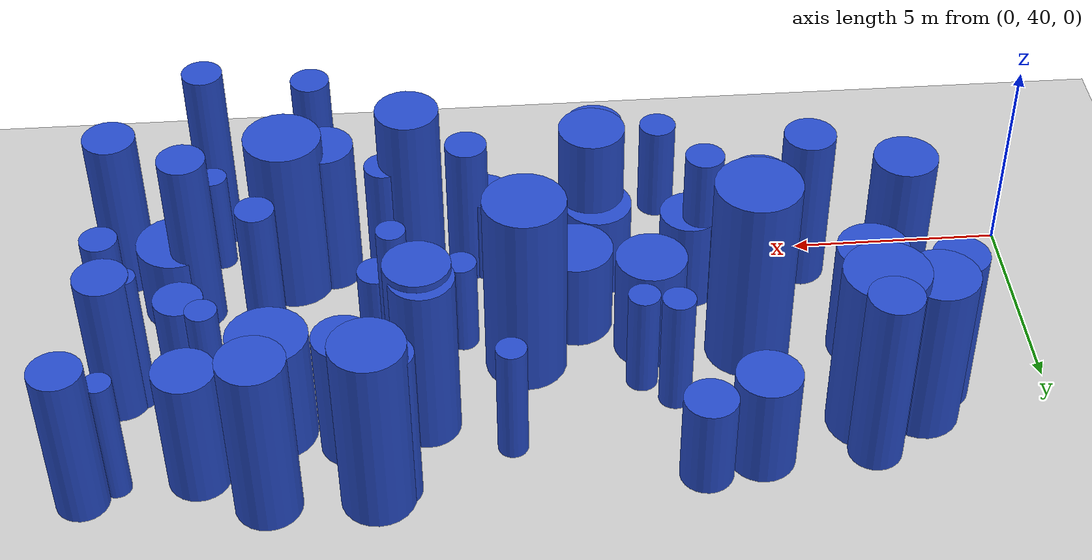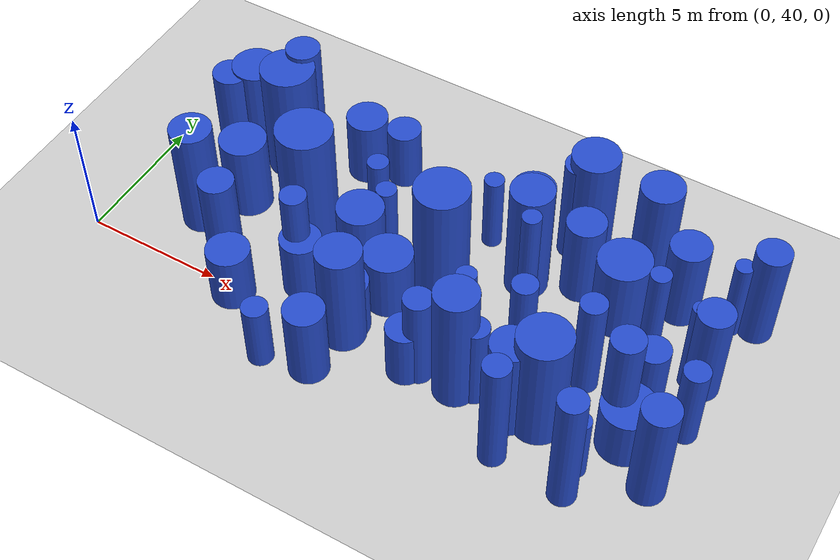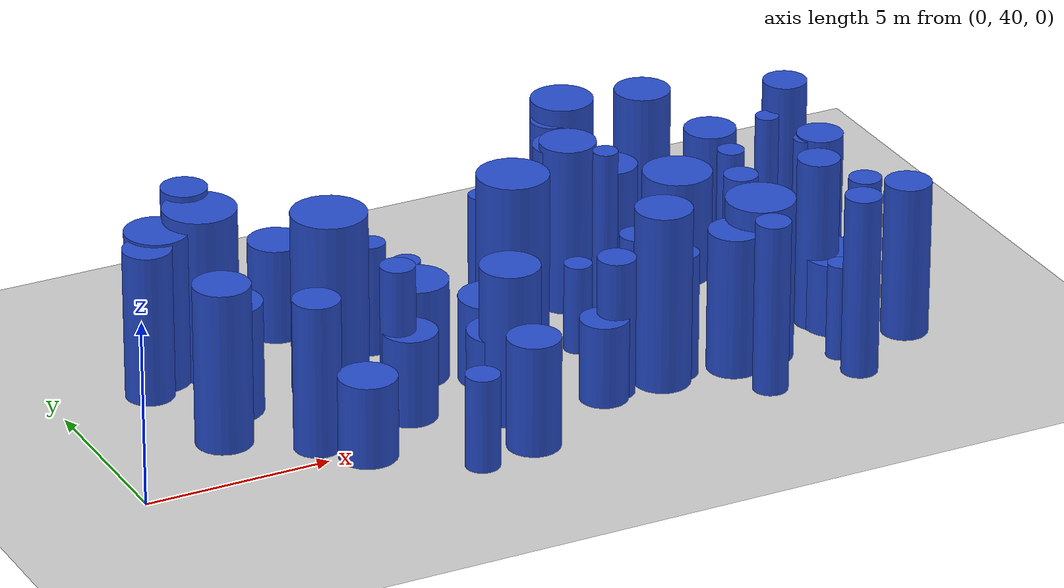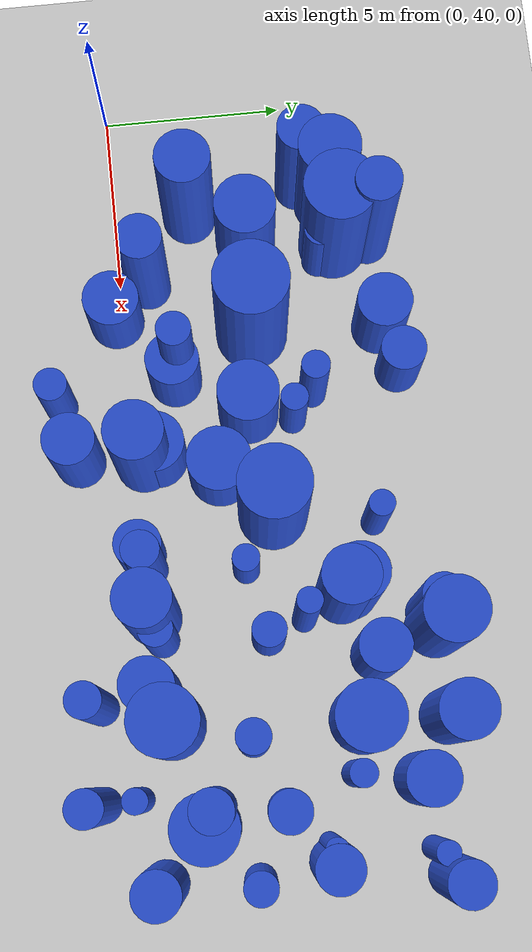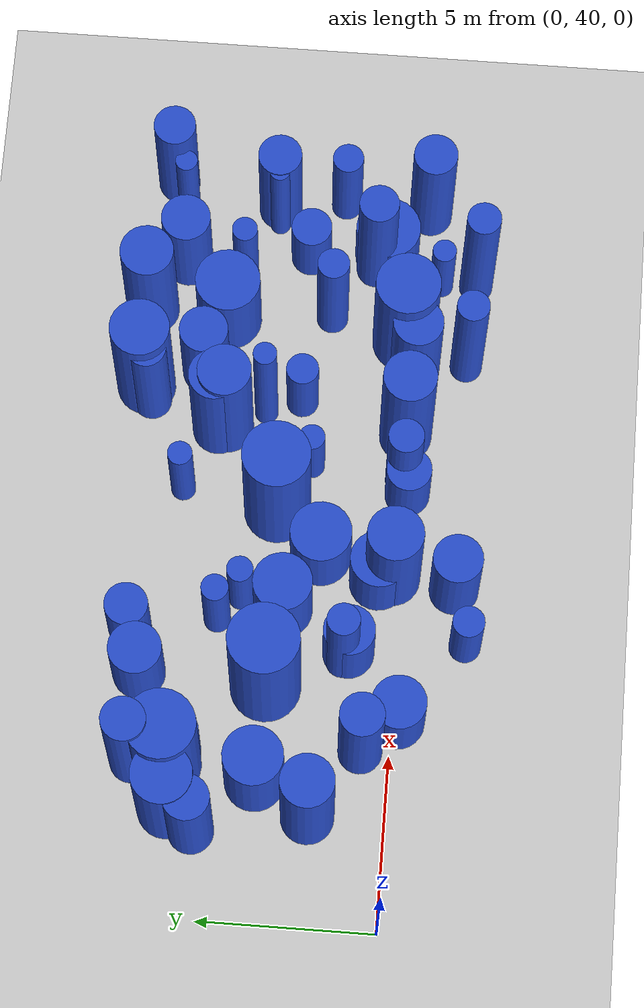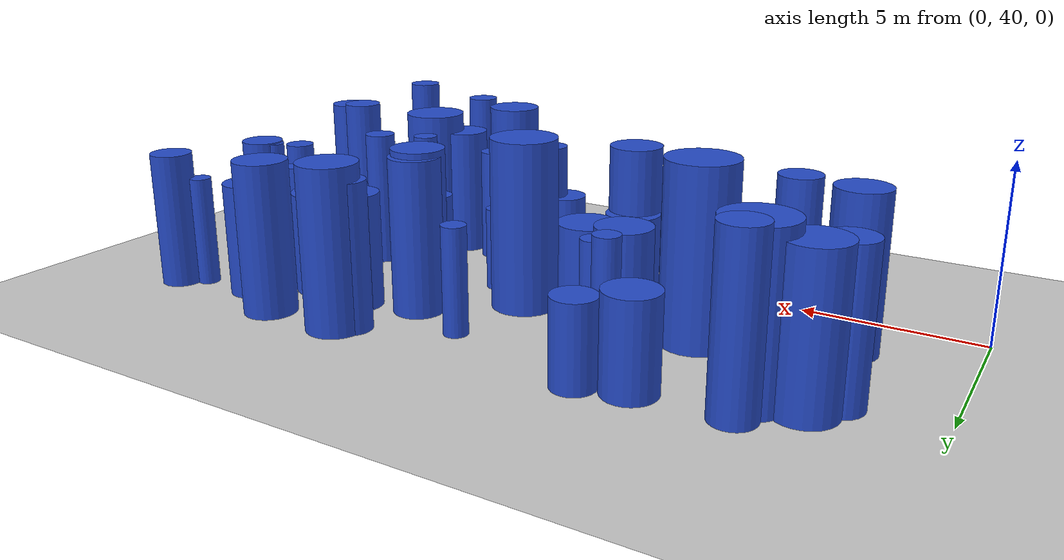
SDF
<sdf version="1.6">
 <world name="default">
  <model name="ground_plane">
   <static>1</static>
   <link name="link">
    <collision name="collision">
     <geometry><plane><normal>0 0 1</normal><size>100 100</size></plane></geometry>
     <surface><friction><ode><mu>100</mu><mu2>50</mu2></ode></friction></surface>
    </collision>
    <visual name="visual">
     <cast_shadows>0</cast_shadows>
     <geometry><plane><normal>0 0 1</normal><size>100 100</size></plane></geometry>
     <material>
      <script><uri>file://media/materials/scripts/gazebo.material</uri><name>Gazebo/Grey</name></script>
     </material>
    </visual>
   </link>
  </model>
  <model name="0">
   <static>0</static>
   <link name="link">
    <inertial>
     <mass>2</mass>
     <inertia><ixx>1.91349</ixx><ixy>0</ixy><ixz>0</ixz><iyy>1.91349</iyy><iyz>0</iyz><izz>0.709288</izz></inertia>
    </inertial>
    <collision name="collision">
     <geometry><cylinder><length>3.05828</length><radius>0.842192</radius></cylinder></geometry>
     <surface><contact><collide_without_contact>1</collide_without_contact></contact></surface>
    </collision>
    <visual name="visual">
     <geometry><cylinder><length>3.05828</length><radius>0.842192</radius></cylinder></geometry>
     <material>
      <script><uri>file://media/materials/scripts/gazebo.material</uri><name>Gazebo/Blue</name></script>
     </material>
    </visual>
    <gravity>0</gravity>
   </link>
   <pose>4.01882 43.668 1.52914 0 -0 0</pose>
  </model>
  <model name="28">
   <static>0</static>
   <link name="link">
    <inertial>
     <mass>2</mass>
     <inertia><ixx>3.31167</ixx><ixy>0</ixy><ixz>0</ixz><iyy>3.31167</iyy><iyz>0</iyz><izz>0.713837</izz></inertia>
    </inertial>
    <collision name="collision">
     <geometry><cylinder><length>4.21052</length><radius>0.844889</radius></cylinder></geometry>
     <surface><contact><collide_without_contact>1</collide_without_contact></contact></surface>
    </collision>
    <visual name="visual">
     <geometry><cylinder><length>4.21052</length><radius>0.844889</radius></cylinder></geometry>
     <material>
      <script><uri>file://media/materials/scripts/gazebo.material</uri><name>Gazebo/Blue</name></script>
     </material>
    </visual>
    <gravity>0</gravity>
   </link>
   <pose>3.07266 46.0083 2.10526 0 -0 0</pose>
  </model>
  <model name="68">
   <static>0</static>
   <link name="link">
    <inertial>
     <mass>2</mass>
     <inertia><ixx>1.10679</ixx><ixy>0</ixy><ixz>0</ixz><iyy>1.10679</iyy><iyz>0</iyz><izz>0.375621</izz></inertia>
    </inertial>
    <collision name="collision">
     <geometry><cylinder><length>2.34816</length><radius>0.61288</radius></cylinder></geometry>
     <surface><contact><collide_without_contact>1</collide_without_contact></contact></surface>
    </collision>
    <visual name="visual">
     <geometry><cylinder><length>2.34816</length><radius>0.61288</radius></cylinder></geometry>
     <material>
      <script><uri>file://media/materials/scripts/gazebo.material</uri><name>Gazebo/Blue</name></script>
     </material>
    </visual>
    <gravity>0</gravity>
   </link>
   <pose>8.21004 47.5125 1.17408 0 -0 0</pose>
  </model>
  <model name="74">
   <static>0</static>
   <link name="link">
    <inertial>
     <mass>2</mass>
     <inertia><ixx>3.87836</ixx><ixy>0</ixy><ixz>0</ixz><iyy>3.87836</iyy><iyz>0</iyz><izz>0.568034</izz></inertia>
    </inertial>
    <collision name="collision">
     <geometry><cylinder><length>4.64393</length><radius>0.75368</radius></cylinder></geometry>
     <surface><contact><collide_without_contact>1</collide_without_contact></contact></surface>
    </collision>
    <visual name="visual">
     <geometry><cylinder><length>4.64393</length><radius>0.75368</radius></cylinder></geometry>
     <material>
      <script><uri>file://media/materials/scripts/gazebo.material</uri><name>Gazebo/Blue</name></script>
     </material>
    </visual>
    <gravity>0</gravity>
   </link>
   <pose>14.3901 45.2579 2.32196 0 -0 0</pose>
  </model>
  <model name="82">
   <static>0</static>
   <link name="link">
    <inertial>
     <mass>2</mass>
     <inertia><ixx>4.29467</ixx><ixy>0</ixy><ixz>0</ixz><iyy>4.29467</iyy><iyz>0</iyz><izz>0.559638</izz></inertia>
    </inertial>
    <collision name="collision">
     <geometry><cylinder><length>4.90807</length><radius>0.74809</radius></cylinder></geometry>
     <surface><contact><collide_without_contact>1</collide_without_contact></contact></surface>
    </collision>
    <visual name="visual">
     <geometry><cylinder><length>4.90807</length><radius>0.74809</radius></cylinder></geometry>
     <material>
      <script><uri>file://media/materials/scripts/gazebo.material</uri><name>Gazebo/Blue</name></script>
     </material>
    </visual>
    <gravity>0</gravity>
   </link>
   <pose>14.4841 40.1495 2.45403 0 -0 0</pose>
  </model>
  <model name="88">
   <static>0</static>
   <link name="link">
    <inertial>
     <mass>2</mass>
     <inertia><ixx>2.79987</ixx><ixy>0</ixy><ixz>0</ixz><iyy>2.79987</iyy><iyz>0</iyz><izz>0.506392</izz></inertia>
    </inertial>
    <collision name="collision">
     <geometry><cylinder><length>3.90897</length><radius>0.711612</radius></cylinder></geometry>
     <surface><contact><collide_without_contact>1</collide_without_contact></contact></surface>
    </collision>
    <visual name="visual">
     <geometry><cylinder><length>3.90897</length><radius>0.711612</radius></cylinder></geometry>
     <material>
      <script><uri>file://media/materials/scripts/gazebo.material</uri><name>Gazebo/Blue</name></script>
     </material>
    </visual>
    <gravity>0</gravity>
   </link>
   <pose>16.49 40.0187 1.95448 0 -0 0</pose>
  </model>
  <model name="95">
   <static>0</static>
   <link name="link">
    <inertial>
     <mass>2</mass>
     <inertia><ixx>2.55412</ixx><ixy>0</ixy><ixz>0</ixz><iyy>2.55412</iyy><iyz>0</iyz><izz>0.249734</izz></inertia>
    </inertial>
    <collision name="collision">
     <geometry><cylinder><length>3.81779</length><radius>0.499734</radius></cylinder></geometry>
     <surface><contact><collide_without_contact>1</collide_without_contact></contact></surface>
    </collision>
    <visual name="visual">
     <geometry><cylinder><length>3.81779</length><radius>0.499734</radius></cylinder></geometry>
     <material>
      <script><uri>file://media/materials/scripts/gazebo.material</uri><name>Gazebo/Blue</name></script>
     </material>
    </visual>
    <gravity>0</gravity>
   </link>
   <pose>13.1436 40.1391 1.9089 0 -0 0</pose>
  </model>
  <model name="108">
   <static>0</static>
   <link name="link">
    <inertial>
     <mass>2</mass>
     <inertia><ixx>1.05789</ixx><ixy>0</ixy><ixz>0</ixz><iyy>1.05789</iyy><iyz>0</iyz><izz>0.136166</izz></inertia>
    </inertial>
    <collision name="collision">
     <geometry><cylinder><length>2.43698</length><radius>0.369006</radius></cylinder></geometry>
     <surface><contact><collide_without_contact>1</collide_without_contact></contact></surface>
    </collision>
    <visual name="visual">
     <geometry><cylinder><length>2.43698</length><radius>0.369006</radius></cylinder></geometry>
     <material>
      <script><uri>file://media/materials/scripts/gazebo.material</uri><name>Gazebo/Blue</name></script>
     </material>
    </visual>
    <gravity>0</gravity>
   </link>
   <pose>13.4097 42.7598 1.21849 0 -0 0</pose>
  </model>
  <model name="109">
   <static>0</static>
   <link name="link">
    <inertial>
     <mass>2</mass>
     <inertia><ixx>1.26102</ixx><ixy>0</ixy><ixz>0</ixz><iyy>1.26102</iyy><iyz>0</iyz><izz>0.13849</izz></inertia>
    </inertial>
    <collision name="collision">
     <geometry><cylinder><length>2.67407</length><radius>0.372142</radius></cylinder></geometry>
     <surface><contact><collide_without_contact>1</collide_without_contact></contact></surface>
    </collision>
    <visual name="visual">
     <geometry><cylinder><length>2.67407</length><radius>0.372142</radius></cylinder></geometry>
     <material>
      <script><uri>file://media/materials/scripts/gazebo.material</uri><name>Gazebo/Blue</name></script>
     </material>
    </visual>
    <gravity>0</gravity>
   </link>
   <pose>9.33583 44.4545 1.33704 0 -0 0</pose>
  </model>
  <model name="118">
   <static>0</static>
   <link name="link">
    <inertial>
     <mass>2</mass>
     <inertia>
      <ixx>2.44235</ixx>
      <ixy>0</ixy>
      <ixz>0</ixz>
      <iyy>2.44235</iyy>
      <iyz>0</iyz>
      <izz>0.0851223</izz>
     </inertia>
    </inertial>
    <collision name="collision">
     <geometry><cylinder><length>3.79456</length><radius>0.291757</radius></cylinder></geometry>
     <surface><contact><collide_without_contact>1</collide_without_contact></contact></surface>
    </collision>
    <visual name="visual">
     <geometry><cylinder><length>3.79456</length><radius>0.291757</radius></cylinder></geometry>
     <material>
      <script><uri>file://media/materials/scripts/gazebo.material</uri><name>Gazebo/Blue</name></script>
     </material>
    </visual>
    <gravity>0</gravity>
   </link>
   <pose>20.8287 44.2206 1.89728 0 -0 0</pose>
  </model>
  <model name="134">
   <static>0</static>
   <link name="link">
    <inertial>
     <mass>2</mass>
     <inertia><ixx>1.64957</ixx><ixy>0</ixy><ixz>0</ixz><iyy>1.64957</iyy><iyz>0</iyz><izz>0.147574</izz></inertia>
    </inertial>
    <collision name="collision">
     <geometry><cylinder><length>3.07485</length><radius>0.384153</radius></cylinder></geometry>
     <surface><contact><collide_without_contact>1</collide_without_contact></contact></surface>
    </collision>
    <visual name="visual">
     <geometry><cylinder><length>3.07485</length><radius>0.384153</radius></cylinder></geometry>
     <material>
      <script><uri>file://media/materials/scripts/gazebo.material</uri><name>Gazebo/Blue</name></script>
     </material>
    </visual>
    <gravity>0</gravity>
   </link>
   <pose>8.63414 45.0783 1.53742 0 -0 0</pose>
  </model>
  <model name="142">
   <static>0</static>
   <link name="link">
    <inertial>
     <mass>2</mass>
     <inertia><ixx>3.93182</ixx><ixy>0</ixy><ixz>0</ixz><iyy>3.93182</iyy><iyz>0</iyz><izz>0.700966</izz></inertia>
    </inertial>
    <collision name="collision">
     <geometry><cylinder><length>4.63551</length><radius>0.837237</radius></cylinder></geometry>
     <surface><contact><collide_without_contact>1</collide_without_contact></contact></surface>
    </collision>
    <visual name="visual">
     <geometry><cylinder><length>4.63551</length><radius>0.837237</radius></cylinder></geometry>
     <material>
      <script><uri>file://media/materials/scripts/gazebo.material</uri><name>Gazebo/Blue</name></script>
     </material>
    </visual>
    <gravity>0</gravity>
   </link>
   <pose>15.4713 47.6908 2.31776 0 -0 0</pose>
  </model>
  <model name="145">
   <static>0</static>
   <link name="link">
    <inertial>
     <mass>2</mass>
     <inertia><ixx>2.0837</ixx><ixy>0</ixy><ixz>0</ixz><iyy>2.0837</iyy><iyz>0</iyz><izz>0.21133</izz></inertia>
    </inertial>
    <collision name="collision">
     <geometry><cylinder><length>3.44502</length><radius>0.459706</radius></cylinder></geometry>
     <surface><contact><collide_without_contact>1</collide_without_contact></contact></surface>
    </collision>
    <visual name="visual">
     <geometry><cylinder><length>3.44502</length><radius>0.459706</radius></cylinder></geometry>
     <material>
      <script><uri>file://media/materials/scripts/gazebo.material</uri><name>Gazebo/Blue</name></script>
     </material>
    </visual>
    <gravity>0</gravity>
   </link>
   <pose>15.1046 40.3209 1.72251 0 -0 0</pose>
  </model>
  <model name="152">
   <static>0</static>
   <link name="link">
    <inertial>
     <mass>2</mass>
     <inertia><ixx>3.84591</ixx><ixy>0</ixy><ixz>0</ixz><iyy>3.84591</iyy><iyz>0</iyz><izz>0.314383</izz></inertia>
    </inertial>
    <collision name="collision">
     <geometry><cylinder><length>4.7045</length><radius>0.560698</radius></cylinder></geometry>
     <surface><contact><collide_without_contact>1</collide_without_contact></contact></surface>
    </collision>
    <visual name="visual">
     <geometry><cylinder><length>4.7045</length><radius>0.560698</radius></cylinder></geometry>
     <material>
      <script><uri>file://media/materials/scripts/gazebo.material</uri><name>Gazebo/Blue</name></script>
     </material>
    </visual>
    <gravity>0</gravity>
   </link>
   <pose>19.626 41.337 2.35225 0 -0 0</pose>
  </model>
  <model name="155">
   <static>0</static>
   <link name="link">
    <inertial>
     <mass>2</mass>
     <inertia><ixx>4.46388</ixx><ixy>0</ixy><ixz>0</ixz><iyy>4.46388</iyy><iyz>0</iyz><izz>0.908011</izz></inertia>
    </inertial>
    <collision name="collision">
     <geometry><cylinder><length>4.90502</length><radius>0.952896</radius></cylinder></geometry>
     <surface><contact><collide_without_contact>1</collide_without_contact></contact></surface>
    </collision>
    <visual name="visual">
     <geometry><cylinder><length>4.90502</length><radius>0.952896</radius></cylinder></geometry>
     <material>
      <script><uri>file://media/materials/scripts/gazebo.material</uri><name>Gazebo/Blue</name></script>
     </material>
    </visual>
    <gravity>0</gravity>
   </link>
   <pose>11.9712 43.6332 2.45251 0 -0 0</pose>
  </model>
  <model name="167">
   <static>0</static>
   <link name="link">
    <inertial>
     <mass>2</mass>
     <inertia><ixx>1.42631</ixx><ixy>0</ixy><ixz>0</ixz><iyy>1.42631</iyy><iyz>0</iyz><izz>0.558462</izz></inertia>
    </inertial>
    <collision name="collision">
     <geometry><cylinder><length>2.62345</length><radius>0.747303</radius></cylinder></geometry>
     <surface><contact><collide_without_contact>1</collide_without_contact></contact></surface>
    </collision>
    <visual name="visual">
     <geometry><cylinder><length>2.62345</length><radius>0.747303</radius></cylinder></geometry>
     <material>
      <script><uri>file://media/materials/scripts/gazebo.material</uri><name>Gazebo/Blue</name></script>
     </material>
    </visual>
    <gravity>0</gravity>
   </link>
   <pose>6.90825 47.1397 1.31173 0 -0 0</pose>
  </model>
  <model name="175">
   <static>0</static>
   <link name="link">
    <inertial>
     <mass>2</mass>
     <inertia><ixx>3.72911</ixx><ixy>0</ixy><ixz>0</ixz><iyy>3.72911</iyy><iyz>0</iyz><izz>0.833685</izz></inertia>
    </inertial>
    <collision name="collision">
     <geometry><cylinder><length>4.45798</length><radius>0.913064</radius></cylinder></geometry>
     <surface><contact><collide_without_contact>1</collide_without_contact></contact></surface>
    </collision>
    <visual name="visual">
     <geometry><cylinder><length>4.45798</length><radius>0.913064</radius></cylinder></geometry>
     <material>
      <script><uri>file://media/materials/scripts/gazebo.material</uri><name>Gazebo/Blue</name></script>
     </material>
    </visual>
    <gravity>0</gravity>
   </link>
   <pose>17.3945 40.3735 2.22899 0 -0 0</pose>
  </model>
  <model name="179">
   <static>0</static>
   <link name="link">
    <inertial>
     <mass>2</mass>
     <inertia><ixx>2.08157</ixx><ixy>0</ixy><ixz>0</ixz><iyy>2.08157</iyy><iyz>0</iyz><izz>0.475053</izz></inertia>
    </inertial>
    <collision name="collision">
     <geometry><cylinder><length>3.3263</length><radius>0.689241</radius></cylinder></geometry>
     <surface><contact><collide_without_contact>1</collide_without_contact></contact></surface>
    </collision>
    <visual name="visual">
     <geometry><cylinder><length>3.3263</length><radius>0.689241</radius></cylinder></geometry>
     <material>
      <script><uri>file://media/materials/scripts/gazebo.material</uri><name>Gazebo/Blue</name></script>
     </material>
    </visual>
    <gravity>0</gravity>
   </link>
   <pose>16.0661 46.0022 1.66315 0 -0 0</pose>
  </model>
  <model name="189">
   <static>0</static>
   <link name="link">
    <inertial>
     <mass>2</mass>
     <inertia><ixx>1.29349</ixx><ixy>0</ixy><ixz>0</ixz><iyy>1.29349</iyy><iyz>0</iyz><izz>0.210349</izz></inertia>
    </inertial>
    <collision name="collision">
     <geometry><cylinder><length>2.67019</length><radius>0.458638</radius></cylinder></geometry>
     <surface><contact><collide_without_contact>1</collide_without_contact></contact></surface>
    </collision>
    <visual name="visual">
     <geometry><cylinder><length>2.67019</length><radius>0.458638</radius></cylinder></geometry>
     <material>
      <script><uri>file://media/materials/scripts/gazebo.material</uri><name>Gazebo/Blue</name></script>
     </material>
    </visual>
    <gravity>0</gravity>
   </link>
   <pose>15.3332 43.1693 1.33509 0 -0 0</pose>
  </model>
  <model name="228">
   <static>0</static>
   <link name="link">
    <inertial>
     <mass>2</mass>
     <inertia><ixx>3.06322</ixx><ixy>0</ixy><ixz>0</ixz><iyy>3.06322</iyy><iyz>0</iyz><izz>0.414416</izz></inertia>
    </inertial>
    <collision name="collision">
     <geometry><cylinder><length>4.13957</length><radius>0.643751</radius></cylinder></geometry>
     <surface><contact><collide_without_contact>1</collide_without_contact></contact></surface>
    </collision>
    <visual name="visual">
     <geometry><cylinder><length>4.13957</length><radius>0.643751</radius></cylinder></geometry>
     <material>
      <script><uri>file://media/materials/scripts/gazebo.material</uri><name>Gazebo/Blue</name></script>
     </material>
    </visual>
    <gravity>0</gravity>
   </link>
   <pose>2.4945 45.3105 2.06979 0 -0 0</pose>
  </model>
  <model name="229">
   <static>0</static>
   <link name="link">
    <inertial>
     <mass>2</mass>
     <inertia><ixx>3.49535</ixx><ixy>0</ixy><ixz>0</ixz><iyy>3.49535</iyy><iyz>0</iyz><izz>0.568767</izz></inertia>
    </inertial>
    <collision name="collision">
     <geometry><cylinder><length>4.38929</length><radius>0.754166</radius></cylinder></geometry>
     <surface><contact><collide_without_contact>1</collide_without_contact></contact></surface>
    </collision>
    <visual name="visual">
     <geometry><cylinder><length>4.38929</length><radius>0.754166</radius></cylinder></geometry>
     <material>
      <script><uri>file://media/materials/scripts/gazebo.material</uri><name>Gazebo/Blue</name></script>
     </material>
    </visual>
    <gravity>0</gravity>
   </link>
   <pose>17.8693 47.7119 2.19464 0 -0 0</pose>
  </model>
  <model name="232">
   <static>0</static>
   <link name="link">
    <inertial>
     <mass>2</mass>
     <inertia><ixx>3.90025</ixx><ixy>0</ixy><ixz>0</ixz><iyy>3.90025</iyy><iyz>0</iyz><izz>0.947604</izz></inertia>
    </inertial>
    <collision name="collision">
     <geometry><cylinder><length>4.53417</length><radius>0.97345</radius></cylinder></geometry>
     <surface><contact><collide_without_contact>1</collide_without_contact></contact></surface>
    </collision>
    <visual name="visual">
     <geometry><cylinder><length>4.53417</length><radius>0.97345</radius></cylinder></geometry>
     <material>
      <script><uri>file://media/materials/scripts/gazebo.material</uri><name>Gazebo/Blue</name></script>
     </material>
    </visual>
    <gravity>0</gravity>
   </link>
   <pose>4.33411 46.1373 2.26709 0 -0 0</pose>
  </model>
  <model name="240">
   <static>0</static>
   <link name="link">
    <inertial>
     <mass>2</mass>
     <inertia><ixx>3.86499</ixx><ixy>0</ixy><ixz>0</ixz><iyy>3.86499</iyy><iyz>0</iyz><izz>0.382414</izz></inertia>
    </inertial>
    <collision name="collision">
     <geometry><cylinder><length>4.69497</length><radius>0.618397</radius></cylinder></geometry>
     <surface><contact><collide_without_contact>1</collide_without_contact></contact></surface>
    </collision>
    <visual name="visual">
     <geometry><cylinder><length>4.69497</length><radius>0.618397</radius></cylinder></geometry>
     <material>
      <script><uri>file://media/materials/scripts/gazebo.material</uri><name>Gazebo/Blue</name></script>
     </material>
    </visual>
    <gravity>0</gravity>
   </link>
   <pose>4.35108 47.1129 2.34748 0 -0 0</pose>
  </model>
  <model name="260">
   <static>0</static>
   <link name="link">
    <inertial>
     <mass>2</mass>
     <inertia><ixx>2.64909</ixx><ixy>0</ixy><ixz>0</ixz><iyy>2.64909</iyy><iyz>0</iyz><izz>0.386923</izz></inertia>
    </inertial>
    <collision name="collision">
     <geometry><cylinder><length>3.83846</length><radius>0.622031</radius></cylinder></geometry>
     <surface><contact><collide_without_contact>1</collide_without_contact></contact></surface>
    </collision>
    <visual name="visual">
     <geometry><cylinder><length>3.83846</length><radius>0.622031</radius></cylinder></geometry>
     <material>
      <script><uri>file://media/materials/scripts/gazebo.material</uri><name>Gazebo/Blue</name></script>
     </material>
    </visual>
    <gravity>0</gravity>
   </link>
   <pose>21.307 44.2487 1.91923 0 -0 0</pose>
  </model>
  <model name="276">
   <static>0</static>
   <link name="link">
    <inertial>
     <mass>2</mass>
     <inertia><ixx>2.07114</ixx><ixy>0</ixy><ixz>0</ixz><iyy>2.07114</iyy><iyz>0</iyz><izz>0.1301</izz></inertia>
    </inertial>
    <collision name="collision">
     <geometry><cylinder><length>3.46937</length><radius>0.360694</radius></cylinder></geometry>
     <surface><contact><collide_without_contact>1</collide_without_contact></contact></surface>
    </collision>
    <visual name="visual">
     <geometry><cylinder><length>3.46937</length><radius>0.360694</radius></cylinder></geometry>
     <material>
      <script><uri>file://media/materials/scripts/gazebo.material</uri><name>Gazebo/Blue</name></script>
     </material>
    </visual>
    <gravity>0</gravity>
   </link>
   <pose>19.1176 45.0842 1.73469 0 -0 0</pose>
  </model>
  <model name="279">
   <static>0</static>
   <link name="link">
    <inertial>
     <mass>2</mass>
     <inertia><ixx>1.11092</ixx><ixy>0</ixy><ixz>0</ixz><iyy>1.11092</iyy><iyz>0</iyz><izz>0.855924</izz></inertia>
    </inertial>
    <collision name="collision">
     <geometry><cylinder><length>2.02429</length><radius>0.925162</radius></cylinder></geometry>
     <surface><contact><collide_without_contact>1</collide_without_contact></contact></surface>
    </collision>
    <visual name="visual">
     <geometry><cylinder><length>2.02429</length><radius>0.925162</radius></cylinder></geometry>
     <material>
      <script><uri>file://media/materials/scripts/gazebo.material</uri><name>Gazebo/Blue</name></script>
     </material>
    </visual>
    <gravity>0</gravity>
   </link>
   <pose>20.093 41.0453 1.01215 0 -0 0</pose>
  </model>
  <model name="300">
   <static>0</static>
   <link name="link">
    <inertial>
     <mass>2</mass>
     <inertia><ixx>3.06132</ixx><ixy>0</ixy><ixz>0</ixz><iyy>3.06132</iyy><iyz>0</iyz><izz>0.210529</izz></inertia>
    </inertial>
    <collision name="collision">
     <geometry><cylinder><length>4.21145</length><radius>0.458835</radius></cylinder></geometry>
     <surface><contact><collide_without_contact>1</collide_without_contact></contact></surface>
    </collision>
    <visual name="visual">
     <geometry><cylinder><length>4.21145</length><radius>0.458835</radius></cylinder></geometry>
     <material>
      <script><uri>file://media/materials/scripts/gazebo.material</uri><name>Gazebo/Blue</name></script>
     </material>
    </visual>
    <gravity>0</gravity>
   </link>
   <pose>7.65049 41.4905 2.10573 0 -0 0</pose>
  </model>
  <model name="305">
   <static>0</static>
   <link name="link">
    <inertial>
     <mass>2</mass>
     <inertia><ixx>3.07344</ixx><ixy>0</ixy><ixz>0</ixz><iyy>3.07344</iyy><iyz>0</iyz><izz>0.383348</izz></inertia>
    </inertial>
    <collision name="collision">
     <geometry><cylinder><length>4.1582</length><radius>0.619151</radius></cylinder></geometry>
     <surface><contact><collide_without_contact>1</collide_without_contact></contact></surface>
    </collision>
    <visual name="visual">
     <geometry><cylinder><length>4.1582</length><radius>0.619151</radius></cylinder></geometry>
     <material>
      <script><uri>file://media/materials/scripts/gazebo.material</uri><name>Gazebo/Blue</name></script>
     </material>
    </visual>
    <gravity>0</gravity>
   </link>
   <pose>5.07735 40.8119 2.0791 0 -0 0</pose>
  </model>
  <model name="319">
   <static>0</static>
   <link name="link">
    <inertial>
     <mass>2</mass>
     <inertia><ixx>4.22781</ixx><ixy>0</ixy><ixz>0</ixz><iyy>4.22781</iyy><iyz>0</iyz><izz>0.231481</izz></inertia>
    </inertial>
    <collision name="collision">
     <geometry><cylinder><length>4.96713</length><radius>0.481124</radius></cylinder></geometry>
     <surface><contact><collide_without_contact>1</collide_without_contact></contact></surface>
    </collision>
    <visual name="visual">
     <geometry><cylinder><length>4.96713</length><radius>0.481124</radius></cylinder></geometry>
     <material>
      <script><uri>file://media/materials/scripts/gazebo.material</uri><name>Gazebo/Blue</name></script>
     </material>
    </visual>
    <gravity>0</gravity>
   </link>
   <pose>19.2726 38.3965 2.48357 0 -0 0</pose>
  </model>
  <model name="321">
   <static>0</static>
   <link name="link">
    <inertial>
     <mass>2</mass>
     <inertia><ixx>3.59995</ixx><ixy>0</ixy><ixz>0</ixz><iyy>3.59995</iyy><iyz>0</iyz><izz>0.54843</izz></inertia>
    </inertial>
    <collision name="collision">
     <geometry><cylinder><length>4.46704</length><radius>0.74056</radius></cylinder></geometry>
     <surface><contact><collide_without_contact>1</collide_without_contact></contact></surface>
    </collision>
    <visual name="visual">
     <geometry><cylinder><length>4.46704</length><radius>0.74056</radius></cylinder></geometry>
     <material>
      <script><uri>file://media/materials/scripts/gazebo.material</uri><name>Gazebo/Blue</name></script>
     </material>
    </visual>
    <gravity>0</gravity>
   </link>
   <pose>14.3127 45.5094 2.23352 0 -0 0</pose>
  </model>
  <model name="322">
   <static>0</static>
   <link name="link">
    <inertial>
     <mass>2</mass>
     <inertia><ixx>4.63713</ixx><ixy>0</ixy><ixz>0</ixz><iyy>4.63713</iyy><iyz>0</iyz><izz>0.99391</izz></inertia>
    </inertial>
    <collision name="collision">
     <geometry><cylinder><length>4.98408</length><radius>0.996951</radius></cylinder></geometry>
     <surface><contact><collide_without_contact>1</collide_without_contact></contact></surface>
    </collision>
    <visual name="visual">
     <geometry><cylinder><length>4.98408</length><radius>0.996951</radius></cylinder></geometry>
     <material>
      <script><uri>file://media/materials/scripts/gazebo.material</uri><name>Gazebo/Blue</name></script>
     </material>
    </visual>
    <gravity>0</gravity>
   </link>
   <pose>6.7494 43.5717 2.49204 0 -0 0</pose>
  </model>
  <model name="324">
   <static>0</static>
   <link name="link">
    <inertial>
     <mass>2</mass>
     <inertia><ixx>1.13385</ixx><ixy>0</ixy><ixz>0</ixz><iyy>1.13385</iyy><iyz>0</iyz><izz>0.584504</izz></inertia>
    </inertial>
    <collision name="collision">
     <geometry><cylinder><length>2.24713</length><radius>0.764528</radius></cylinder></geometry>
     <surface><contact><collide_without_contact>1</collide_without_contact></contact></surface>
    </collision>
    <visual name="visual">
     <geometry><cylinder><length>2.24713</length><radius>0.764528</radius></cylinder></geometry>
     <material>
      <script><uri>file://media/materials/scripts/gazebo.material</uri><name>Gazebo/Blue</name></script>
     </material>
    </visual>
    <gravity>0</gravity>
   </link>
   <pose>6.00566 39.8318 1.12357 0 -0 0</pose>
  </model>
  <model name="325">
   <static>0</static>
   <link name="link">
    <inertial>
     <mass>2</mass>
     <inertia><ixx>1.27823</ixx><ixy>0</ixy><ixz>0</ixz><iyy>1.27823</iyy><iyz>0</iyz><izz>0.754345</izz></inertia>
    </inertial>
    <collision name="collision">
     <geometry><cylinder><length>2.32516</length><radius>0.86853</radius></cylinder></geometry>
     <surface><contact><collide_without_contact>1</collide_without_contact></contact></surface>
    </collision>
    <visual name="visual">
     <geometry><cylinder><length>2.32516</length><radius>0.86853</radius></cylinder></geometry>
     <material>
      <script><uri>file://media/materials/scripts/gazebo.material</uri><name>Gazebo/Blue</name></script>
     </material>
    </visual>
    <gravity>0</gravity>
   </link>
   <pose>10.6997 42.3137 1.16258 0 -0 0</pose>
  </model>
  <model name="334">
   <static>0</static>
   <link name="link">
    <inertial>
     <mass>2</mass>
     <inertia><ixx>3.26591</ixx><ixy>0</ixy><ixz>0</ixz><iyy>3.26591</iyy><iyz>0</iyz><izz>0.61902</izz></inertia>
    </inertial>
    <collision name="collision">
     <geometry><cylinder><length>4.2117</length><radius>0.786778</radius></cylinder></geometry>
     <surface><contact><collide_without_contact>1</collide_without_contact></contact></surface>
    </collision>
    <visual name="visual">
     <geometry><cylinder><length>4.2117</length><radius>0.786778</radius></cylinder></geometry>
     <material>
      <script><uri>file://media/materials/scripts/gazebo.material</uri><name>Gazebo/Blue</name></script>
     </material>
    </visual>
    <gravity>0</gravity>
   </link>
   <pose>10.1774 40.2475 2.10585 0 -0 0</pose>
  </model>
  <model name="337">
   <static>0</static>
   <link name="link">
    <inertial>
     <mass>2</mass>
     <inertia><ixx>1.23255</ixx><ixy>0</ixy><ixz>0</ixz><iyy>1.23255</iyy><iyz>0</iyz><izz>0.525802</izz></inertia>
    </inertial>
    <collision name="collision">
     <geometry><cylinder><length>2.41203</length><radius>0.725122</radius></cylinder></geometry>
     <surface><contact><collide_without_contact>1</collide_without_contact></contact></surface>
    </collision>
    <visual name="visual">
     <geometry><cylinder><length>2.41203</length><radius>0.725122</radius></cylinder></geometry>
     <material>
      <script><uri>file://media/materials/scripts/gazebo.material</uri><name>Gazebo/Blue</name></script>
     </material>
    </visual>
    <gravity>0</gravity>
   </link>
   <pose>7.90143 41.3302 1.20601 0 -0 0</pose>
  </model>
  <model name="338">
   <static>0</static>
   <link name="link">
    <inertial>
     <mass>2</mass>
     <inertia><ixx>3.05876</ixx><ixy>0</ixy><ixz>0</ixz><iyy>3.05876</iyy><iyz>0</iyz><izz>0.308744</izz></inertia>
    </inertial>
    <collision name="collision">
     <geometry><cylinder><length>4.17448</length><radius>0.555647</radius></cylinder></geometry>
     <surface><contact><collide_without_contact>1</collide_without_contact></contact></surface>
    </collision>
    <visual name="visual">
     <geometry><cylinder><length>4.17448</length><radius>0.555647</radius></cylinder></geometry>
     <material>
      <script><uri>file://media/materials/scripts/gazebo.material</uri><name>Gazebo/Blue</name></script>
     </material>
    </visual>
    <gravity>0</gravity>
   </link>
   <pose>15.0571 47.4882 2.08724 0 -0 0</pose>
  </model>
  <model name="343">
   <static>0</static>
   <link name="link">
    <inertial>
     <mass>2</mass>
     <inertia><ixx>1.19285</ixx><ixy>0</ixy><ixz>0</ixz><iyy>1.19285</iyy><iyz>0</iyz><izz>0.202566</izz></inertia>
    </inertial>
    <collision name="collision">
     <geometry><cylinder><length>2.55918</length><radius>0.450073</radius></cylinder></geometry>
     <surface><contact><collide_without_contact>1</collide_without_contact></contact></surface>
    </collision>
    <visual name="visual">
     <geometry><cylinder><length>2.55918</length><radius>0.450073</radius></cylinder></geometry>
     <material>
      <script><uri>file://media/materials/scripts/gazebo.material</uri><name>Gazebo/Blue</name></script>
     </material>
    </visual>
    <gravity>0</gravity>
   </link>
   <pose>8.32653 38.0844 1.27959 0 -0 0</pose>
  </model>
  <model name="346">
   <static>0</static>
   <link name="link">
    <inertial>
     <mass>2</mass>
     <inertia><ixx>3.53172</ixx><ixy>0</ixy><ixz>0</ixz><iyy>3.53172</iyy><iyz>0</iyz><izz>0.559053</izz></inertia>
    </inertial>
    <collision name="collision">
     <geometry><cylinder><length>4.41737</length><radius>0.747698</radius></cylinder></geometry>
     <surface><contact><collide_without_contact>1</collide_without_contact></contact></surface>
    </collision>
    <visual name="visual">
     <geometry><cylinder><length>4.41737</length><radius>0.747698</radius></cylinder></geometry>
     <material>
      <script><uri>file://media/materials/scripts/gazebo.material</uri><name>Gazebo/Blue</name></script>
     </material>
    </visual>
    <gravity>0</gravity>
   </link>
   <pose>3.10565 42.1355 2.20869 0 -0 0</pose>
  </model>
  <model name="354">
   <static>0</static>
   <link name="link">
    <inertial>
     <mass>2</mass>
     <inertia><ixx>2.08348</ixx><ixy>0</ixy><ixz>0</ixz><iyy>2.08348</iyy><iyz>0</iyz><izz>0.492055</izz></inertia>
    </inertial>
    <collision name="collision">
     <geometry><cylinder><length>3.32035</length><radius>0.701466</radius></cylinder></geometry>
     <surface><contact><collide_without_contact>1</collide_without_contact></contact></surface>
    </collision>
    <visual name="visual">
     <geometry><cylinder><length>3.32035</length><radius>0.701466</radius></cylinder></geometry>
     <material>
      <script><uri>file://media/materials/scripts/gazebo.material</uri><name>Gazebo/Blue</name></script>
     </material>
    </visual>
    <gravity>0</gravity>
   </link>
   <pose>19.4159 46.7882 1.66017 0 -0 0</pose>
  </model>
  <model name="357">
   <static>0</static>
   <link name="link">
    <inertial>
     <mass>2</mass>
     <inertia><ixx>1.18026</ixx><ixy>0</ixy><ixz>0</ixz><iyy>1.18026</iyy><iyz>0</iyz><izz>0.202862</izz></inertia>
    </inertial>
    <collision name="collision">
     <geometry><cylinder><length>2.5442</length><radius>0.450403</radius></cylinder></geometry>
     <surface><contact><collide_without_contact>1</collide_without_contact></contact></surface>
    </collision>
    <visual name="visual">
     <geometry><cylinder><length>2.5442</length><radius>0.450403</radius></cylinder></geometry>
     <material>
      <script><uri>file://media/materials/scripts/gazebo.material</uri><name>Gazebo/Blue</name></script>
     </material>
    </visual>
    <gravity>0</gravity>
   </link>
   <pose>4.75001 45.6599 1.2721 0 -0 0</pose>
  </model>
  <model name="365">
   <static>0</static>
   <link name="link">
    <inertial>
     <mass>2</mass>
     <inertia><ixx>1.05494</ixx><ixy>0</ixy><ixz>0</ixz><iyy>1.05494</iyy><iyz>0</iyz><izz>0.408327</izz></inertia>
    </inertial>
    <collision name="collision">
     <geometry><cylinder><length>2.25935</length><radius>0.639004</radius></cylinder></geometry>
     <surface><contact><collide_without_contact>1</collide_without_contact></contact></surface>
    </collision>
    <visual name="visual">
     <geometry><cylinder><length>2.25935</length><radius>0.639004</radius></cylinder></geometry>
     <material>
      <script><uri>file://media/materials/scripts/gazebo.material</uri><name>Gazebo/Blue</name></script>
     </material>
    </visual>
    <gravity>0</gravity>
   </link>
   <pose>12.7254 39.9855 1.12968 0 -0 0</pose>
  </model>
  <model name="383">
   <static>0</static>
   <link name="link">
    <inertial>
     <mass>2</mass>
     <inertia><ixx>1.61821</ixx><ixy>0</ixy><ixz>0</ixz><iyy>1.61821</iyy><iyz>0</iyz><izz>0.121946</izz></inertia>
    </inertial>
    <collision name="collision">
     <geometry><cylinder><length>3.0567</length><radius>0.349207</radius></cylinder></geometry>
     <surface><contact><collide_without_contact>1</collide_without_contact></contact></surface>
    </collision>
    <visual name="visual">
     <geometry><cylinder><length>3.0567</length><radius>0.349207</radius></cylinder></geometry>
     <material>
      <script><uri>file://media/materials/scripts/gazebo.material</uri><name>Gazebo/Blue</name></script>
     </material>
    </visual>
    <gravity>0</gravity>
   </link>
   <pose>12.444 46.3646 1.52835 0 -0 0</pose>
  </model>
  <model name="386">
   <static>0</static>
   <link name="link">
    <inertial>
     <mass>2</mass>
     <inertia><ixx>3.73611</ixx><ixy>0</ixy><ixz>0</ixz><iyy>3.73611</iyy><iyz>0</iyz><izz>0.109859</izz></inertia>
    </inertial>
    <collision name="collision">
     <geometry><cylinder><length>4.69969</length><radius>0.33145</radius></cylinder></geometry>
     <surface><contact><collide_without_contact>1</collide_without_contact></contact></surface>
    </collision>
    <visual name="visual">
     <geometry><cylinder><length>4.69969</length><radius>0.33145</radius></cylinder></geometry>
     <material>
      <script><uri>file://media/materials/scripts/gazebo.material</uri><name>Gazebo/Blue</name></script>
     </material>
    </visual>
    <gravity>0</gravity>
   </link>
   <pose>14.9246 44.1749 2.34985 0 -0 0</pose>
  </model>
  <model name="395">
   <static>0</static>
   <link name="link">
    <inertial>
     <mass>2</mass>
     <inertia><ixx>1.78497</ixx><ixy>0</ixy><ixz>0</ixz><iyy>1.78497</iyy><iyz>0</iyz><izz>0.491911</izz></inertia>
    </inertial>
    <collision name="collision">
     <geometry><cylinder><length>3.03876</length><radius>0.701363</radius></cylinder></geometry>
     <surface><contact><collide_without_contact>1</collide_without_contact></contact></surface>
    </collision>
    <visual name="visual">
     <geometry><cylinder><length>3.03876</length><radius>0.701363</radius></cylinder></geometry>
     <material>
      <script><uri>file://media/materials/scripts/gazebo.material</uri><name>Gazebo/Blue</name></script>
     </material>
    </visual>
    <gravity>0</gravity>
   </link>
   <pose>9.96078 38.4895 1.51938 0 -0 0</pose>
  </model>
  <model name="401">
   <static>0</static>
   <link name="link">
    <inertial>
     <mass>2</mass>
     <inertia><ixx>2.89606</ixx><ixy>0</ixy><ixz>0</ixz><iyy>2.89606</iyy><iyz>0</iyz><izz>0.205646</izz></inertia>
    </inertial>
    <collision name="collision">
     <geometry><cylinder><length>4.09382</length><radius>0.453482</radius></cylinder></geometry>
     <surface><contact><collide_without_contact>1</collide_without_contact></contact></surface>
    </collision>
    <visual name="visual">
     <geometry><cylinder><length>4.09382</length><radius>0.453482</radius></cylinder></geometry>
     <material>
      <script><uri>file://media/materials/scripts/gazebo.material</uri><name>Gazebo/Blue</name></script>
     </material>
    </visual>
    <gravity>0</gravity>
   </link>
   <pose>17.9887 42.4952 2.04691 0 -0 0</pose>
  </model>
  <model name="403">
   <static>0</static>
   <link name="link">
    <inertial>
     <mass>2</mass>
     <inertia><ixx>1.91189</ixx><ixy>0</ixy><ixz>0</ixz><iyy>1.91189</iyy><iyz>0</iyz><izz>0.858588</izz></inertia>
    </inertial>
    <collision name="collision">
     <geometry><cylinder><length>2.98255</length><radius>0.9266</radius></cylinder></geometry>
     <surface><contact><collide_without_contact>1</collide_without_contact></contact></surface>
    </collision>
    <visual name="visual">
     <geometry><cylinder><length>2.98255</length><radius>0.9266</radius></cylinder></geometry>
     <material>
      <script><uri>file://media/materials/scripts/gazebo.material</uri><name>Gazebo/Blue</name></script>
     </material>
    </visual>
    <gravity>0</gravity>
   </link>
   <pose>17.7378 45.4682 1.49127 0 -0 0</pose>
  </model>
  <model name="404">
   <static>0</static>
   <link name="link">
    <inertial>
     <mass>2</mass>
     <inertia><ixx>1.18362</ixx><ixy>0</ixy><ixz>0</ixz><iyy>1.18362</iyy><iyz>0</iyz><izz>0.678936</izz></inertia>
    </inertial>
    <collision name="collision">
     <geometry><cylinder><length>2.25054</length><radius>0.823976</radius></cylinder></geometry>
     <surface><contact><collide_without_contact>1</collide_without_contact></contact></surface>
    </collision>
    <visual name="visual">
     <geometry><cylinder><length>2.25054</length><radius>0.823976</radius></cylinder></geometry>
     <material>
      <script><uri>file://media/materials/scripts/gazebo.material</uri><name>Gazebo/Blue</name></script>
     </material>
    </visual>
    <gravity>0</gravity>
   </link>
   <pose>10.053 40.635 1.12527 0 -0 0</pose>
  </model>
  <model name="416">
   <static>0</static>
   <link name="link">
    <inertial>
     <mass>2</mass>
     <inertia><ixx>2.55844</ixx><ixy>0</ixy><ixz>0</ixz><iyy>2.55844</iyy><iyz>0</iyz><izz>0.238195</izz></inertia>
    </inertial>
    <collision name="collision">
     <geometry><cylinder><length>3.82571</length><radius>0.488053</radius></cylinder></geometry>
     <surface><contact><collide_without_contact>1</collide_without_contact></contact></surface>
    </collision>
    <visual name="visual">
     <geometry><cylinder><length>3.82571</length><radius>0.488053</radius></cylinder></geometry>
     <material>
      <script><uri>file://media/materials/scripts/gazebo.material</uri><name>Gazebo/Blue</name></script>
     </material>
    </visual>
    <gravity>0</gravity>
   </link>
   <pose>10.3213 40.259 1.91286 0 -0 0</pose>
  </model>
  <model name="420">
   <static>0</static>
   <link name="link">
    <inertial>
     <mass>2</mass>
     <inertia><ixx>1.2135</ixx><ixy>0</ixy><ixz>0</ixz><iyy>1.2135</iyy><iyz>0</iyz><izz>0.1152</izz></inertia>
    </inertial>
    <collision name="collision">
     <geometry><cylinder><length>2.63352</length><radius>0.339411</radius></cylinder></geometry>
     <surface><contact><collide_without_contact>1</collide_without_contact></contact></surface>
    </collision>
    <visual name="visual">
     <geometry><cylinder><length>2.63352</length><radius>0.339411</radius></cylinder></geometry>
     <material>
      <script><uri>file://media/materials/scripts/gazebo.material</uri><name>Gazebo/Blue</name></script>
     </material>
    </visual>
    <gravity>0</gravity>
   </link>
   <pose>19.2317 39.4053 1.31676 0 -0 0</pose>
  </model>
  <model name="425">
   <static>0</static>
   <link name="link">
    <inertial>
     <mass>2</mass>
     <inertia><ixx>3.24842</ixx><ixy>0</ixy><ixz>0</ixz><iyy>3.24842</iyy><iyz>0</iyz><izz>0.386817</izz></inertia>
    </inertial>
    <collision name="collision">
     <geometry><cylinder><length>4.28136</length><radius>0.621946</radius></cylinder></geometry>
     <surface><contact><collide_without_contact>1</collide_without_contact></contact></surface>
    </collision>
    <visual name="visual">
     <geometry><cylinder><length>4.28136</length><radius>0.621946</radius></cylinder></geometry>
     <material>
      <script><uri>file://media/materials/scripts/gazebo.material</uri><name>Gazebo/Blue</name></script>
     </material>
    </visual>
    <gravity>0</gravity>
   </link>
   <pose>21.4325 39.8494 2.14068 0 -0 0</pose>
  </model>
  <model name="446">
   <static>0</static>
   <link name="link">
    <inertial>
     <mass>2</mass>
     <inertia><ixx>2.82253</ixx><ixy>0</ixy><ixz>0</ixz><iyy>2.82253</iyy><iyz>0</iyz><izz>0.357662</izz></inertia>
    </inertial>
    <collision name="collision">
     <geometry><cylinder><length>3.98274</length><radius>0.598048</radius></cylinder></geometry>
     <surface><contact><collide_without_contact>1</collide_without_contact></contact></surface>
    </collision>
    <visual name="visual">
     <geometry><cylinder><length>3.98274</length><radius>0.598048</radius></cylinder></geometry>
     <material>
      <script><uri>file://media/materials/scripts/gazebo.material</uri><name>Gazebo/Blue</name></script>
     </material>
    </visual>
    <gravity>0</gravity>
   </link>
   <pose>21.9417 47.2946 1.99137 0 -0 0</pose>
  </model>
  <model name="447">
   <static>0</static>
   <link name="link">
    <inertial>
     <mass>2</mass>
     <inertia><ixx>1.79982</ixx><ixy>0</ixy><ixz>0</ixz><iyy>1.79982</iyy><iyz>0</iyz><izz>0.100305</izz></inertia>
    </inertial>
    <collision name="collision">
     <geometry><cylinder><length>3.24006</length><radius>0.316709</radius></cylinder></geometry>
     <surface><contact><collide_without_contact>1</collide_without_contact></contact></surface>
    </collision>
    <visual name="visual">
     <geometry><cylinder><length>3.24006</length><radius>0.316709</radius></cylinder></geometry>
     <material>
      <script><uri>file://media/materials/scripts/gazebo.material</uri><name>Gazebo/Blue</name></script>
     </material>
    </visual>
    <gravity>0</gravity>
   </link>
   <pose>21.2155 46.9299 1.62003 0 -0 0</pose>
  </model>
  <model name="454">
   <static>0</static>
   <link name="link">
    <inertial>
     <mass>2</mass>
     <inertia><ixx>3.82274</ixx><ixy>0</ixy><ixz>0</ixz><iyy>3.82274</iyy><iyz>0</iyz><izz>0.212992</izz></inertia>
    </inertial>
    <collision name="collision">
     <geometry><cylinder><length>4.72202</length><radius>0.461511</radius></cylinder></geometry>
     <surface><contact><collide_without_contact>1</collide_without_contact></contact></surface>
    </collision>
    <visual name="visual">
     <geometry><cylinder><length>4.72202</length><radius>0.461511</radius></cylinder></geometry>
     <material>
      <script><uri>file://media/materials/scripts/gazebo.material</uri><name>Gazebo/Blue</name></script>
     </material>
    </visual>
    <gravity>0</gravity>
   </link>
   <pose>16.7519 38.5418 2.36101 0 -0 0</pose>
  </model>
  <model name="461">
   <static>0</static>
   <link name="link">
    <inertial>
     <mass>2</mass>
     <inertia><ixx>1.59593</ixx><ixy>0</ixy><ixz>0</ixz><iyy>1.59593</iyy><iyz>0</iyz><izz>0.693759</izz></inertia>
    </inertial>
    <collision name="collision">
     <geometry><cylinder><length>2.73757</length><radius>0.832922</radius></cylinder></geometry>
     <surface><contact><collide_without_contact>1</collide_without_contact></contact></surface>
    </collision>
    <visual name="visual">
     <geometry><cylinder><length>2.73757</length><radius>0.832922</radius></cylinder></geometry>
     <material>
      <script><uri>file://media/materials/scripts/gazebo.material</uri><name>Gazebo/Blue</name></script>
     </material>
    </visual>
    <gravity>0</gravity>
   </link>
   <pose>9.04708 43.2544 1.36879 0 -0 0</pose>
  </model>
  <model name="475">
   <static>0</static>
   <link name="link">
    <inertial>
     <mass>2</mass>
     <inertia>
      <ixx>0.968552</ixx>
      <ixy>0</ixy>
      <ixz>0</ixz>
      <iyy>0.968552</iyy>
      <iyz>0</iyz>
      <izz>0.336882</izz>
     </inertia>
    </inertial>
    <collision name="collision">
     <geometry><cylinder><length>2.19104</length><radius>0.580415</radius></cylinder></geometry>
     <surface><contact><collide_without_contact>1</collide_without_contact></contact></surface>
    </collision>
    <visual name="visual">
     <geometry><cylinder><length>2.19104</length><radius>0.580415</radius></cylinder></geometry>
     <material>
      <script><uri>file://media/materials/scripts/gazebo.material</uri><name>Gazebo/Blue</name></script>
     </material>
    </visual>
    <gravity>0</gravity>
   </link>
   <pose>19.8837 43.2429 1.09552 0 -0 0</pose>
  </model>
  <model name="498">
   <static>0</static>
   <link name="link">
    <inertial>
     <mass>2</mass>
     <inertia><ixx>1.9195</ixx><ixy>0</ixy><ixz>0</ixz><iyy>1.9195</iyy><iyz>0</iyz><izz>0.193162</izz></inertia>
    </inertial>
    <collision name="collision">
     <geometry><cylinder><length>3.30719</length><radius>0.439502</radius></cylinder></geometry>
     <surface><contact><collide_without_contact>1</collide_without_contact></contact></surface>
    </collision>
    <visual name="visual">
     <geometry><cylinder><length>3.30719</length><radius>0.439502</radius></cylinder></geometry>
     <material>
      <script><uri>file://media/materials/scripts/gazebo.material</uri><name>Gazebo/Blue</name></script>
     </material>
    </visual>
    <gravity>0</gravity>
   </link>
   <pose>21.5914 42.3227 1.65359 0 -0 0</pose>
  </model>
 </world>
</sdf>
